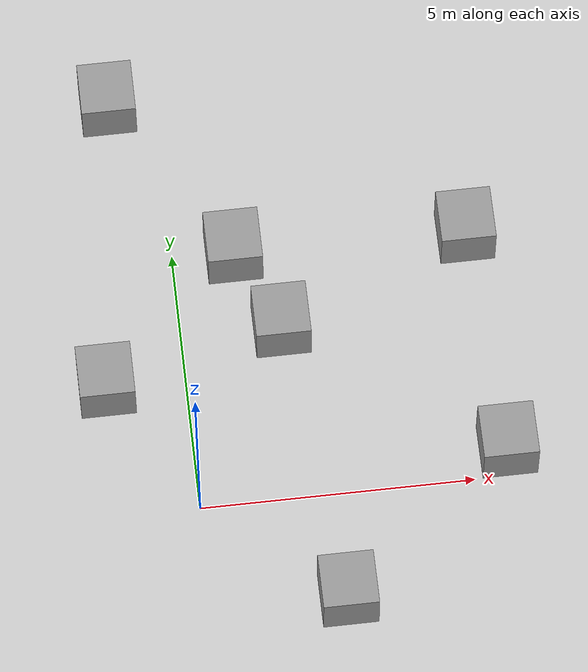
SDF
<sdf version="1.6">
 <world name="default">
  <light name="sun" type="directional">
   <pose>0 0 10 0 -0 0</pose>
   <diffuse>0.8 0.8 0.8 1</diffuse>
   <specular>0.1 0.1 0.1 1</specular>
   <attenuation>
    <range>1000</range>
    <constant>0.9</constant>
    <linear>0.01</linear>
    <quadratic>0.001</quadratic>
   </attenuation>
   <direction>-0.5 0.5 -1</direction>
  </light>
  <model name="ground_plane">
   <static>1</static>
   <link name="link">
    <collision name="collision">
     <geometry><plane><normal>0 0 1</normal><size>100 100</size></plane></geometry>
     <surface><friction><ode><mu>100</mu><mu2>50</mu2></ode></friction></surface>
    </collision>
    <visual name="visual">
     <cast_shadows>0</cast_shadows>
     <geometry><plane><normal>0 0 1</normal><size>100 100</size></plane></geometry>
     <material>
      <script><uri>file://media/materials/scripts/gazebo.material</uri><name>Gazebo/Grey</name></script>
     </material>
    </visual>
   </link>
  </model>
  <gravity>0 0 -9.8</gravity>
  <magnetic_field>6e-06 2.3e-05 -4.2e-05</magnetic_field>
  <atmosphere type="adiabatic"/>
  <physics name="default_physics" default="0" type="ode">
   <max_step_size>0.001</max_step_size>
   <real_time_factor>1</real_time_factor>
   <real_time_update_rate>1000</real_time_update_rate>
  </physics>
  <scene><ambient>0.4 0.4 0.4 1</ambient><background>0.7 0.7 0.7 1</background><shadows>1</shadows></scene>
  <spherical_coordinates>
   <surface_model>EARTH_WGS84</surface_model>
   <latitude_deg>0</latitude_deg>
   <longitude_deg>0</longitude_deg>
   <elevation>0</elevation>
   <heading_deg>0</heading_deg>
  </spherical_coordinates>
  <model name="unit_box_0">
   <pose>5.6388 0.509217 0.499995 -1e-05 0 0</pose>
   <link name="link">
    <inertial>
     <mass>1</mass>
     <inertia>
      <ixx>0.166667</ixx>
      <ixy>0</ixy>
      <ixz>0</ixz>
      <iyy>0.166667</iyy>
      <iyz>0</iyz>
      <izz>0.166667</izz>
     </inertia>
    </inertial>
    <collision name="collision"><geometry><box><size>1 1 1</size></box></geometry></collision>
    <visual name="visual">
     <geometry><box><size>1 1 1</size></box></geometry>
     <material>
      <script><name>Gazebo/Grey</name><uri>file://media/materials/scripts/gazebo.material</uri></script>
     </material>
    </visual>
   </link>
  </model>
  <model name="unit_box_1_0">
   <pose>5.40089 4.80793 0.499995 -1e-05 0 0</pose>
   <link name="link">
    <inertial>
     <mass>1</mass>
     <inertia>
      <ixx>0.166667</ixx>
      <ixy>0</ixy>
      <ixz>0</ixz>
      <iyy>0.166667</iyy>
      <iyz>0</iyz>
      <izz>0.166667</izz>
     </inertia>
    </inertial>
    <collision name="collision"><geometry><box><size>1 1 1</size></box></geometry></collision>
    <visual name="visual">
     <geometry><box><size>1 1 1</size></box></geometry>
     <material>
      <script><name>Gazebo/Grey</name><uri>file://media/materials/scripts/gazebo.material</uri></script>
     </material>
    </visual>
   </link>
  </model>
  <model name="unit_box_1_1">
   <pose>2.44535 -2.01702 0.499995 0 1e-05 0</pose>
   <link name="link">
    <inertial>
     <mass>1</mass>
     <inertia>
      <ixx>0.166667</ixx>
      <ixy>0</ixy>
      <ixz>0</ixz>
      <iyy>0.166667</iyy>
      <iyz>0</iyz>
      <izz>0.166667</izz>
     </inertia>
    </inertial>
    <collision name="collision"><geometry><box><size>1 1 1</size></box></geometry></collision>
    <visual name="visual">
     <geometry><box><size>1 1 1</size></box></geometry>
     <material>
      <script><name>Gazebo/Grey</name><uri>file://media/materials/scripts/gazebo.material</uri></script>
     </material>
    </visual>
   </link>
  </model>
  <model name="unit_box_1_2">
   <pose>1.83221 3.31828 0.499995 -1e-05 0 0</pose>
   <link name="link">
    <inertial>
     <mass>1</mass>
     <inertia>
      <ixx>0.166667</ixx>
      <ixy>0</ixy>
      <ixz>0</ixz>
      <iyy>0.166667</iyy>
      <iyz>0</iyz>
      <izz>0.166667</izz>
     </inertia>
    </inertial>
    <collision name="collision"><geometry><box><size>1 1 1</size></box></geometry></collision>
    <visual name="visual">
     <geometry><box><size>1 1 1</size></box></geometry>
     <material>
      <script><name>Gazebo/Grey</name><uri>file://media/materials/scripts/gazebo.material</uri></script>
     </material>
    </visual>
   </link>
  </model>
  <model name="unit_box_1_3">
   <pose>-1.45783 2.48798 0.499995 0 1e-05 0</pose>
   <link name="link">
    <inertial>
     <mass>1</mass>
     <inertia>
      <ixx>0.166667</ixx>
      <ixy>0</ixy>
      <ixz>0</ixz>
      <iyy>0.166667</iyy>
      <iyz>0</iyz>
      <izz>0.166667</izz>
     </inertia>
    </inertial>
    <collision name="collision"><geometry><box><size>1 1 1</size></box></geometry></collision>
    <visual name="visual">
     <geometry><box><size>1 1 1</size></box></geometry>
     <material>
      <script><name>Gazebo/Grey</name><uri>file://media/materials/scripts/gazebo.material</uri></script>
     </material>
    </visual>
   </link>
  </model>
  <model name="unit_box_1_4">
   <pose>-0.88021 8.1092 0.499995 -1e-05 0 0</pose>
   <link name="link">
    <inertial>
     <mass>1</mass>
     <inertia>
      <ixx>0.166667</ixx>
      <ixy>0</ixy>
      <ixz>0</ixz>
      <iyy>0.166667</iyy>
      <iyz>0</iyz>
      <izz>0.166667</izz>
     </inertia>
    </inertial>
    <collision name="collision"><geometry><box><size>1 1 1</size></box></geometry></collision>
    <visual name="visual">
     <geometry><box><size>1 1 1</size></box></geometry>
     <material>
      <script><name>Gazebo/Grey</name><uri>file://media/materials/scripts/gazebo.material</uri></script>
     </material>
    </visual>
   </link>
  </model>
  <model name="unit_box_1_5">
   <pose>1.1209 4.87995 0.5 0 -0 0</pose>
   <link name="link">
    <inertial>
     <mass>1</mass>
     <inertia>
      <ixx>0.166667</ixx>
      <ixy>0</ixy>
      <ixz>0</ixz>
      <iyy>0.166667</iyy>
      <iyz>0</iyz>
      <izz>0.166667</izz>
     </inertia>
    </inertial>
    <collision name="collision"><geometry><box><size>1 1 1</size></box></geometry></collision>
    <visual name="visual">
     <geometry><box><size>1 1 1</size></box></geometry>
     <material>
      <script><name>Gazebo/Grey</name><uri>file://media/materials/scripts/gazebo.material</uri></script>
     </material>
    </visual>
   </link>
  </model>
 </world>
</sdf>
